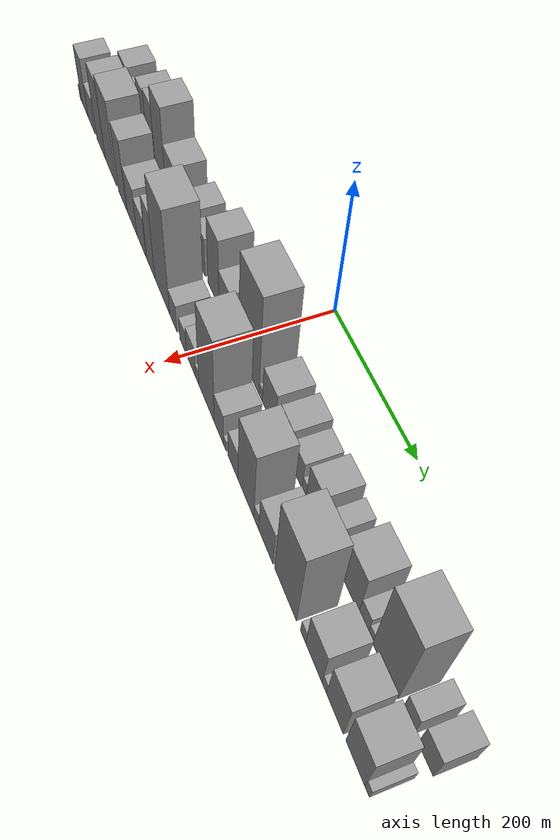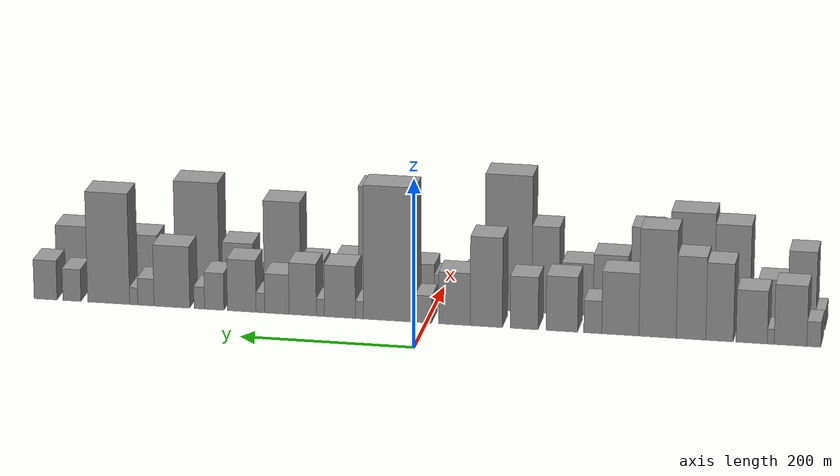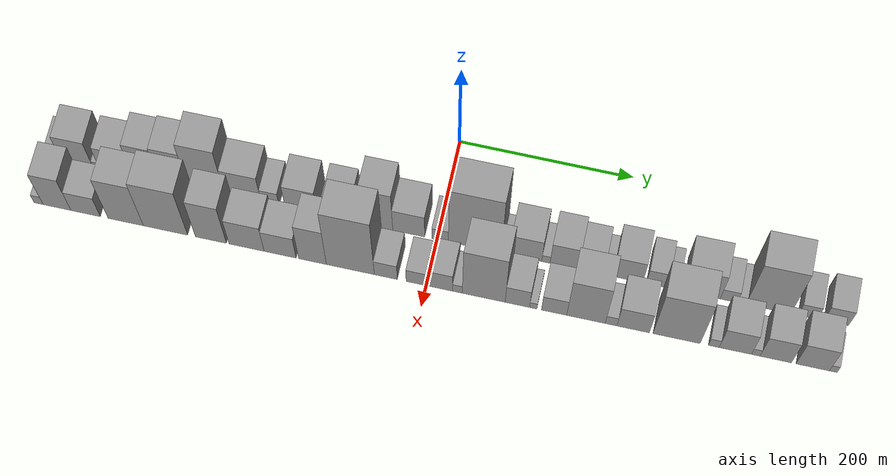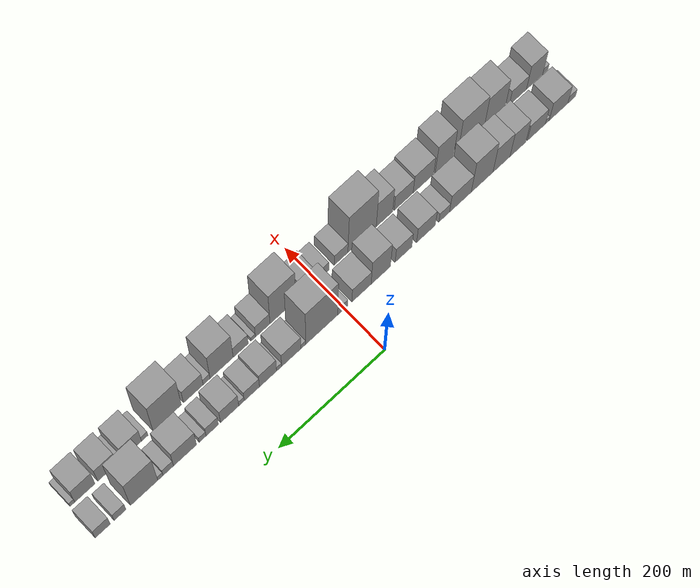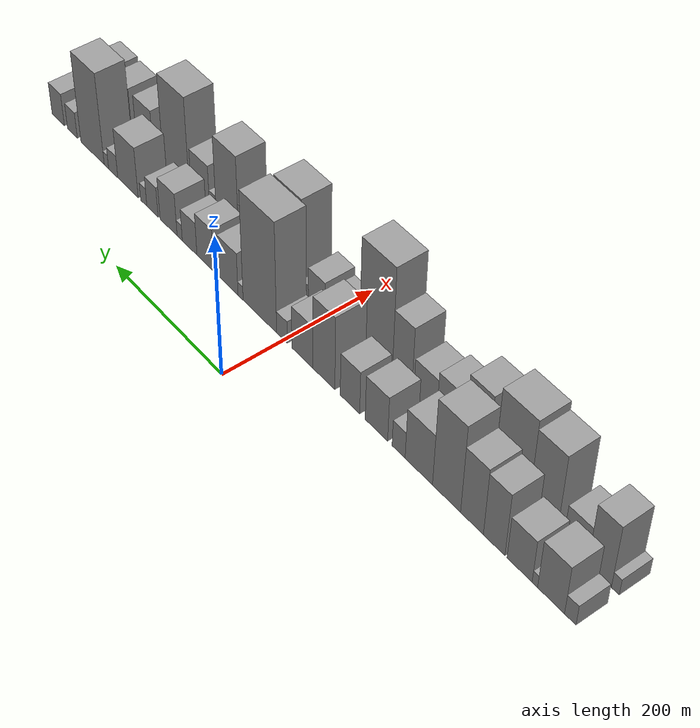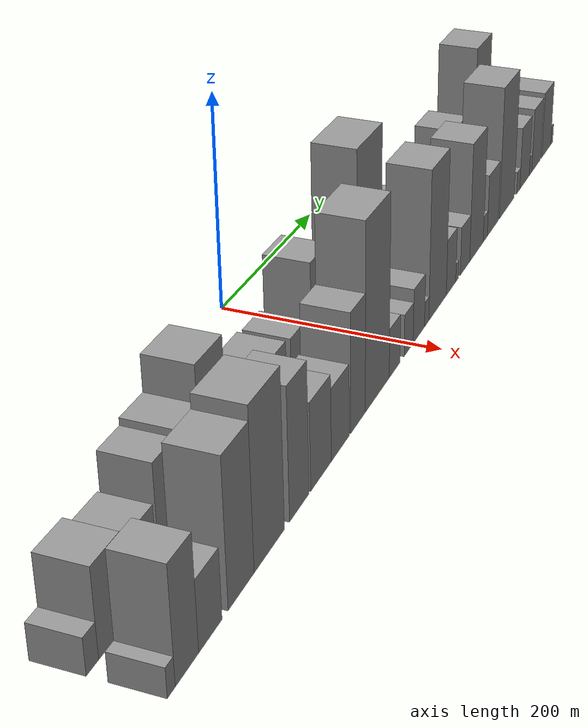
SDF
<sdf version="1.6">
 <world name="default">
  <scene>
   <sky><clouds><speed>12</speed></clouds></sky>
   <ambient>0.4 0.4 0.4 1</ambient>
   <background>0.7 0.7 0.7 1</background>
   <shadows>1</shadows>
  </scene>
  <gravity>0 0 -9.8066</gravity>
  <magnetic_field>6e-06 2.3e-05 -4.2e-05</magnetic_field>
  <physics default="0" name="default_physics" type="ode">
   <ode>
    <solver>
     <type>quick</type>
     <iters>10</iters>
     <sor>1.0</sor>
     <use_dynamic_moi_rescaling>0</use_dynamic_moi_rescaling>
    </solver>
    <constraints>
     <cfm>0</cfm>
     <erp>0.2</erp>
     <contact_max_correcting_vel>100</contact_max_correcting_vel>
     <contact_surface_layer>0.001</contact_surface_layer>
    </constraints>
   </ode>
   <max_step_size>0.004</max_step_size>
   <real_time_factor>1</real_time_factor>
   <real_time_update_rate>250</real_time_update_rate>
  </physics>
  <light name="sun" type="directional">
   <pose>0 0 10 0 0 0</pose>
   <diffuse>0.8 0.8 0.8 1</diffuse>
   <specular>0.2 0.2 0.2 1</specular>
   <attenuation>
    <range>1000</range>
    <constant>0.9</constant>
    <linear>0.01</linear>
    <quadratic>0.001</quadratic>
   </attenuation>
   <direction>-0.5 0.1 -0.9</direction>
  </light>
  <model name="building_1">
   <static>1</static>
   <pose>100.0000 -442.2037 0 0.000000 0.000000 0.000000</pose>
   <link name="link">
    <pose>0 0 15.00 0 0 0</pose>
    <collision name="collision"><geometry><box><size>40.0000 15.5926 30.0000</size></box></geometry></collision>
    <visual name="visual">
     <cast_shadows>0</cast_shadows>
     <geometry><box><size>40.0000 15.5926 30.0000</size></box></geometry>
     <material>
      <script>
       <uri>model://grey_wall/materials/scripts</uri>
       <uri>model://grey_wall/materials/textures</uri>
       <name>vrc/grey_wall</name>
      </script>
     </material>
    </visual>
   </link>
  </model>
  <model name="building_2">
   <static>1</static>
   <pose>100.0000 -415.8733 0 0.000000 0.000000 0.000000</pose>
   <link name="link">
    <pose>0 0 36.00 0 0 0</pose>
    <collision name="collision"><geometry><box><size>40.0000 37.0681 72.0000</size></box></geometry></collision>
    <visual name="visual">
     <cast_shadows>0</cast_shadows>
     <geometry><box><size>40.0000 37.0681 72.0000</size></box></geometry>
     <material>
      <script>
       <uri>model://grey_wall/materials/scripts</uri>
       <uri>model://grey_wall/materials/textures</uri>
       <name>vrc/grey_wall</name>
      </script>
     </material>
    </visual>
   </link>
  </model>
  <model name="building_3">
   <static>1</static>
   <pose>100.0000 -393.5044 0 0.000000 0.000000 0.000000</pose>
   <link name="link">
    <pose>0 0 9.00 0 0 0</pose>
    <collision name="collision"><geometry><box><size>40.0000 7.6696 18.0000</size></box></geometry></collision>
    <visual name="visual">
     <cast_shadows>0</cast_shadows>
     <geometry><box><size>40.0000 7.6696 18.0000</size></box></geometry>
     <material>
      <script>
       <uri>model://grey_wall/materials/scripts</uri>
       <uri>model://grey_wall/materials/textures</uri>
       <name>vrc/grey_wall</name>
      </script>
     </material>
    </visual>
   </link>
  </model>
  <model name="building_4">
   <static>1</static>
   <pose>100.0000 -371.9706 0 0.000000 0.000000 0.000000</pose>
   <link name="link">
    <pose>0 0 31.50 0 0 0</pose>
    <collision name="collision"><geometry><box><size>40.0000 35.3980 63.0000</size></box></geometry></collision>
    <visual name="visual">
     <cast_shadows>0</cast_shadows>
     <geometry><box><size>40.0000 35.3980 63.0000</size></box></geometry>
     <material>
      <script>
       <uri>model://grey_wall/materials/scripts</uri>
       <uri>model://grey_wall/materials/textures</uri>
       <name>vrc/grey_wall</name>
      </script>
     </material>
    </visual>
   </link>
  </model>
  <model name="building_5">
   <static>1</static>
   <pose>100.0000 -335.6608 0 0.000000 0.000000 0.000000</pose>
   <link name="link">
    <pose>0 0 46.50 0 0 0</pose>
    <collision name="collision"><geometry><box><size>40.0000 31.2217 93.0000</size></box></geometry></collision>
    <visual name="visual">
     <cast_shadows>0</cast_shadows>
     <geometry><box><size>40.0000 31.2217 93.0000</size></box></geometry>
     <material>
      <script>
       <uri>model://grey_wall/materials/scripts</uri>
       <uri>model://grey_wall/materials/textures</uri>
       <name>vrc/grey_wall</name>
      </script>
     </material>
    </visual>
   </link>
  </model>
  <model name="building_6">
   <static>1</static>
   <pose>100.0000 -303.2378 0 0.000000 0.000000 0.000000</pose>
   <link name="link">
    <pose>0 0 49.50 0 0 0</pose>
    <collision name="collision"><geometry><box><size>40.0000 33.6242 99.0000</size></box></geometry></collision>
    <visual name="visual">
     <cast_shadows>0</cast_shadows>
     <geometry><box><size>40.0000 33.6242 99.0000</size></box></geometry>
     <material>
      <script>
       <uri>model://grey_wall/materials/scripts</uri>
       <uri>model://grey_wall/materials/textures</uri>
       <name>vrc/grey_wall</name>
      </script>
     </material>
    </visual>
   </link>
  </model>
  <model name="building_7">
   <static>1</static>
   <pose>100.0000 -265.1929 0 0.000000 0.000000 0.000000</pose>
   <link name="link">
    <pose>0 0 64.50 0 0 0</pose>
    <collision name="collision"><geometry><box><size>40.0000 42.4656 129.0000</size></box></geometry></collision>
    <visual name="visual">
     <cast_shadows>0</cast_shadows>
     <geometry><box><size>40.0000 42.4656 129.0000</size></box></geometry>
     <material>
      <script>
       <uri>model://grey_wall/materials/scripts</uri>
       <uri>model://grey_wall/materials/textures</uri>
       <name>vrc/grey_wall</name>
      </script>
     </material>
    </visual>
   </link>
  </model>
  <model name="building_8">
   <static>1</static>
   <pose>100.0000 -222.7425 0 0.000000 0.000000 0.000000</pose>
   <link name="link">
    <pose>0 0 37.50 0 0 0</pose>
    <collision name="collision"><geometry><box><size>40.0000 42.4352 75.0000</size></box></geometry></collision>
    <visual name="visual">
     <cast_shadows>0</cast_shadows>
     <geometry><box><size>40.0000 42.4352 75.0000</size></box></geometry>
     <material>
      <script>
       <uri>model://grey_wall/materials/scripts</uri>
       <uri>model://grey_wall/materials/textures</uri>
       <name>vrc/grey_wall</name>
      </script>
     </material>
    </visual>
   </link>
  </model>
  <model name="building_9">
   <static>1</static>
   <pose>100.0000 -191.2532 0 0.000000 0.000000 0.000000</pose>
   <link name="link">
    <pose>0 0 19.50 0 0 0</pose>
    <collision name="collision"><geometry><box><size>40.0000 20.5432 39.0000</size></box></geometry></collision>
    <visual name="visual">
     <cast_shadows>0</cast_shadows>
     <geometry><box><size>40.0000 20.5432 39.0000</size></box></geometry>
     <material>
      <script>
       <uri>model://grey_wall/materials/scripts</uri>
       <uri>model://grey_wall/materials/textures</uri>
       <name>vrc/grey_wall</name>
      </script>
     </material>
    </visual>
   </link>
  </model>
  <model name="building_10">
   <static>1</static>
   <pose>100.0000 -155.8428 0 0.000000 0.000000 0.000000</pose>
   <link name="link">
    <pose>0 0 33.00 0 0 0</pose>
    <collision name="collision"><geometry><box><size>40.0000 36.2777 66.0000</size></box></geometry></collision>
    <visual name="visual">
     <cast_shadows>0</cast_shadows>
     <geometry><box><size>40.0000 36.2777 66.0000</size></box></geometry>
     <material>
      <script>
       <uri>model://grey_wall/materials/scripts</uri>
       <uri>model://grey_wall/materials/textures</uri>
       <name>vrc/grey_wall</name>
      </script>
     </material>
    </visual>
   </link>
  </model>
  <model name="building_11">
   <static>1</static>
   <pose>100.0000 -112.6093 0 0.000000 0.000000 0.000000</pose>
   <link name="link">
    <pose>0 0 31.50 0 0 0</pose>
    <collision name="collision"><geometry><box><size>40.0000 32.1892 63.0000</size></box></geometry></collision>
    <visual name="visual">
     <cast_shadows>0</cast_shadows>
     <geometry><box><size>40.0000 32.1892 63.0000</size></box></geometry>
     <material>
      <script>
       <uri>model://grey_wall/materials/scripts</uri>
       <uri>model://grey_wall/materials/textures</uri>
       <name>vrc/grey_wall</name>
      </script>
     </material>
    </visual>
   </link>
  </model>
  <model name="building_12">
   <static>1</static>
   <pose>100.0000 -68.9816 0 0.000000 0.000000 0.000000</pose>
   <link name="link">
    <pose>0 0 54.00 0 0 0</pose>
    <collision name="collision"><geometry><box><size>40.0000 37.0663 108.0000</size></box></geometry></collision>
    <visual name="visual">
     <cast_shadows>0</cast_shadows>
     <geometry><box><size>40.0000 37.0663 108.0000</size></box></geometry>
     <material>
      <script>
       <uri>model://grey_wall/materials/scripts</uri>
       <uri>model://grey_wall/materials/textures</uri>
       <name>vrc/grey_wall</name>
      </script>
     </material>
    </visual>
   </link>
  </model>
  <model name="building_13">
   <static>1</static>
   <pose>100.0000 -32.1462 0 0.000000 0.000000 0.000000</pose>
   <link name="link">
    <pose>0 0 31.50 0 0 0</pose>
    <collision name="collision"><geometry><box><size>40.0000 36.6045 63.0000</size></box></geometry></collision>
    <visual name="visual">
     <cast_shadows>0</cast_shadows>
     <geometry><box><size>40.0000 36.6045 63.0000</size></box></geometry>
     <material>
      <script>
       <uri>model://grey_wall/materials/scripts</uri>
       <uri>model://grey_wall/materials/textures</uri>
       <name>vrc/grey_wall</name>
      </script>
     </material>
    </visual>
   </link>
  </model>
  <model name="building_14">
   <static>1</static>
   <pose>100.0000 3.6285 0 0.000000 0.000000 0.000000</pose>
   <link name="link">
    <pose>0 0 16.50 0 0 0</pose>
    <collision name="collision"><geometry><box><size>40.0000 18.9449 33.0000</size></box></geometry></collision>
    <visual name="visual">
     <cast_shadows>0</cast_shadows>
     <geometry><box><size>40.0000 18.9449 33.0000</size></box></geometry>
     <material>
      <script>
       <uri>model://grey_wall/materials/scripts</uri>
       <uri>model://grey_wall/materials/textures</uri>
       <name>vrc/grey_wall</name>
      </script>
     </material>
    </visual>
   </link>
  </model>
  <model name="building_15">
   <static>1</static>
   <pose>100.0000 43.3502 0 0.000000 0.000000 0.000000</pose>
   <link name="link">
    <pose>0 0 81.00 0 0 0</pose>
    <collision name="collision"><geometry><box><size>40.0000 60.4985 162.0000</size></box></geometry></collision>
    <visual name="visual">
     <cast_shadows>0</cast_shadows>
     <geometry><box><size>40.0000 60.4985 162.0000</size></box></geometry>
     <material>
      <script>
       <uri>model://grey_wall/materials/scripts</uri>
       <uri>model://grey_wall/materials/textures</uri>
       <name>vrc/grey_wall</name>
      </script>
     </material>
    </visual>
   </link>
  </model>
  <model name="building_16">
   <static>1</static>
   <pose>100.0000 78.2731 0 0.000000 0.000000 0.000000</pose>
   <link name="link">
    <pose>0 0 10.50 0 0 0</pose>
    <collision name="collision"><geometry><box><size>40.0000 9.3473 21.0000</size></box></geometry></collision>
    <visual name="visual">
     <cast_shadows>0</cast_shadows>
     <geometry><box><size>40.0000 9.3473 21.0000</size></box></geometry>
     <material>
      <script>
       <uri>model://grey_wall/materials/scripts</uri>
       <uri>model://grey_wall/materials/textures</uri>
       <name>vrc/grey_wall</name>
      </script>
     </material>
    </visual>
   </link>
  </model>
  <model name="building_17">
   <static>1</static>
   <pose>100.0000 100.9975 0 0.000000 0.000000 0.000000</pose>
   <link name="link">
    <pose>0 0 31.50 0 0 0</pose>
    <collision name="collision"><geometry><box><size>40.0000 36.1016 63.0000</size></box></geometry></collision>
    <visual name="visual">
     <cast_shadows>0</cast_shadows>
     <geometry><box><size>40.0000 36.1016 63.0000</size></box></geometry>
     <material>
      <script>
       <uri>model://grey_wall/materials/scripts</uri>
       <uri>model://grey_wall/materials/textures</uri>
       <name>vrc/grey_wall</name>
      </script>
     </material>
    </visual>
   </link>
  </model>
  <model name="building_18">
   <static>1</static>
   <pose>100.0000 123.7609 0 0.000000 0.000000 0.000000</pose>
   <link name="link">
    <pose>0 0 10.50 0 0 0</pose>
    <collision name="collision"><geometry><box><size>40.0000 9.4252 21.0000</size></box></geometry></collision>
    <visual name="visual">
     <cast_shadows>0</cast_shadows>
     <geometry><box><size>40.0000 9.4252 21.0000</size></box></geometry>
     <material>
      <script>
       <uri>model://grey_wall/materials/scripts</uri>
       <uri>model://grey_wall/materials/textures</uri>
       <name>vrc/grey_wall</name>
      </script>
     </material>
    </visual>
   </link>
  </model>
  <model name="building_19">
   <static>1</static>
   <pose>100.0000 144.4785 0 0.000000 0.000000 0.000000</pose>
   <link name="link">
    <pose>0 0 31.50 0 0 0</pose>
    <collision name="collision"><geometry><box><size>40.0000 32.0101 63.0000</size></box></geometry></collision>
    <visual name="visual">
     <cast_shadows>0</cast_shadows>
     <geometry><box><size>40.0000 32.0101 63.0000</size></box></geometry>
     <material>
      <script>
       <uri>model://grey_wall/materials/scripts</uri>
       <uri>model://grey_wall/materials/textures</uri>
       <name>vrc/grey_wall</name>
      </script>
     </material>
    </visual>
   </link>
  </model>
  <model name="building_20">
   <static>1</static>
   <pose>100.0000 174.7218 0 0.000000 0.000000 0.000000</pose>
   <link name="link">
    <pose>0 0 24.00 0 0 0</pose>
    <collision name="collision"><geometry><box><size>40.0000 28.4764 48.0000</size></box></geometry></collision>
    <visual name="visual">
     <cast_shadows>0</cast_shadows>
     <geometry><box><size>40.0000 28.4764 48.0000</size></box></geometry>
     <material>
      <script>
       <uri>model://grey_wall/materials/scripts</uri>
       <uri>model://grey_wall/materials/textures</uri>
       <name>vrc/grey_wall</name>
      </script>
     </material>
    </visual>
   </link>
  </model>
  <model name="building_21">
   <static>1</static>
   <pose>100.0000 194.0544 0 0.000000 0.000000 0.000000</pose>
   <link name="link">
    <pose>0 0 12.00 0 0 0</pose>
    <collision name="collision"><geometry><box><size>40.0000 10.1888 24.0000</size></box></geometry></collision>
    <visual name="visual">
     <cast_shadows>0</cast_shadows>
     <geometry><box><size>40.0000 10.1888 24.0000</size></box></geometry>
     <material>
      <script>
       <uri>model://grey_wall/materials/scripts</uri>
       <uri>model://grey_wall/materials/textures</uri>
       <name>vrc/grey_wall</name>
      </script>
     </material>
    </visual>
   </link>
  </model>
  <model name="building_22">
   <static>1</static>
   <pose>100.0000 216.0240 0 0.000000 0.000000 0.000000</pose>
   <link name="link">
    <pose>0 0 31.50 0 0 0</pose>
    <collision name="collision"><geometry><box><size>40.0000 33.7504 63.0000</size></box></geometry></collision>
    <visual name="visual">
     <cast_shadows>0</cast_shadows>
     <geometry><box><size>40.0000 33.7504 63.0000</size></box></geometry>
     <material>
      <script>
       <uri>model://grey_wall/materials/scripts</uri>
       <uri>model://grey_wall/materials/textures</uri>
       <name>vrc/grey_wall</name>
      </script>
     </material>
    </visual>
   </link>
  </model>
  <model name="building_23">
   <static>1</static>
   <pose>100.0000 248.3061 0 0.000000 0.000000 0.000000</pose>
   <link name="link">
    <pose>0 0 22.50 0 0 0</pose>
    <collision name="collision"><geometry><box><size>40.0000 22.8138 45.0000</size></box></geometry></collision>
    <visual name="visual">
     <cast_shadows>0</cast_shadows>
     <geometry><box><size>40.0000 22.8138 45.0000</size></box></geometry>
     <material>
      <script>
       <uri>model://grey_wall/materials/scripts</uri>
       <uri>model://grey_wall/materials/textures</uri>
       <name>vrc/grey_wall</name>
      </script>
     </material>
    </visual>
   </link>
  </model>
  <model name="building_24">
   <static>1</static>
   <pose>100.0000 265.9778 0 0.000000 0.000000 0.000000</pose>
   <link name="link">
    <pose>0 0 13.50 0 0 0</pose>
    <collision name="collision"><geometry><box><size>40.0000 12.5296 27.0000</size></box></geometry></collision>
    <visual name="visual">
     <cast_shadows>0</cast_shadows>
     <geometry><box><size>40.0000 12.5296 27.0000</size></box></geometry>
     <material>
      <script>
       <uri>model://grey_wall/materials/scripts</uri>
       <uri>model://grey_wall/materials/textures</uri>
       <name>vrc/grey_wall</name>
      </script>
     </material>
    </visual>
   </link>
  </model>
  <model name="building_25">
   <static>1</static>
   <pose>100.0000 298.4218 0 0.000000 0.000000 0.000000</pose>
   <link name="link">
    <pose>0 0 37.50 0 0 0</pose>
    <collision name="collision"><geometry><box><size>40.0000 42.3584 75.0000</size></box></geometry></collision>
    <visual name="visual">
     <cast_shadows>0</cast_shadows>
     <geometry><box><size>40.0000 42.3584 75.0000</size></box></geometry>
     <material>
      <script>
       <uri>model://grey_wall/materials/scripts</uri>
       <uri>model://grey_wall/materials/textures</uri>
       <name>vrc/grey_wall</name>
      </script>
     </material>
    </visual>
   </link>
  </model>
  <model name="building_26">
   <static>1</static>
   <pose>100.0000 329.2476 0 0.000000 0.000000 0.000000</pose>
   <link name="link">
    <pose>0 0 16.50 0 0 0</pose>
    <collision name="collision"><geometry><box><size>40.0000 19.2931 33.0000</size></box></geometry></collision>
    <visual name="visual">
     <cast_shadows>0</cast_shadows>
     <geometry><box><size>40.0000 19.2931 33.0000</size></box></geometry>
     <material>
      <script>
       <uri>model://grey_wall/materials/scripts</uri>
       <uri>model://grey_wall/materials/textures</uri>
       <name>vrc/grey_wall</name>
      </script>
     </material>
    </visual>
   </link>
  </model>
  <model name="building_27">
   <static>1</static>
   <pose>100.0000 343.6469 0 0.000000 0.000000 0.000000</pose>
   <link name="link">
    <pose>0 0 10.50 0 0 0</pose>
    <collision name="collision"><geometry><box><size>40.0000 9.5056 21.0000</size></box></geometry></collision>
    <visual name="visual">
     <cast_shadows>0</cast_shadows>
     <geometry><box><size>40.0000 9.5056 21.0000</size></box></geometry>
     <material>
      <script>
       <uri>model://grey_wall/materials/scripts</uri>
       <uri>model://grey_wall/materials/textures</uri>
       <name>vrc/grey_wall</name>
      </script>
     </material>
    </visual>
   </link>
  </model>
  <model name="building_28">
   <static>1</static>
   <pose>100.0000 373.3791 0 0.000000 0.000000 0.000000</pose>
   <link name="link">
    <pose>0 0 67.50 0 0 0</pose>
    <collision name="collision"><geometry><box><size>40.0000 49.9587 135.0000</size></box></geometry></collision>
    <visual name="visual">
     <cast_shadows>0</cast_shadows>
     <geometry><box><size>40.0000 49.9587 135.0000</size></box></geometry>
     <material>
      <script>
       <uri>model://grey_wall/materials/scripts</uri>
       <uri>model://grey_wall/materials/textures</uri>
       <name>vrc/grey_wall</name>
      </script>
     </material>
    </visual>
   </link>
  </model>
  <model name="building_29">
   <static>1</static>
   <pose>100.0000 417.1376 0 0.000000 0.000000 0.000000</pose>
   <link name="link">
    <pose>0 0 19.50 0 0 0</pose>
    <collision name="collision"><geometry><box><size>40.0000 21.5583 39.0000</size></box></geometry></collision>
    <visual name="visual">
     <cast_shadows>0</cast_shadows>
     <geometry><box><size>40.0000 21.5583 39.0000</size></box></geometry>
     <material>
      <script>
       <uri>model://grey_wall/materials/scripts</uri>
       <uri>model://grey_wall/materials/textures</uri>
       <name>vrc/grey_wall</name>
      </script>
     </material>
    </visual>
   </link>
  </model>
  <model name="building_30">
   <static>1</static>
   <pose>100.0000 448.5752 0 0.000000 0.000000 0.000000</pose>
   <link name="link">
    <pose>0 0 24.00 0 0 0</pose>
    <collision name="collision"><geometry><box><size>40.0000 27.3170 48.0000</size></box></geometry></collision>
    <visual name="visual">
     <cast_shadows>0</cast_shadows>
     <geometry><box><size>40.0000 27.3170 48.0000</size></box></geometry>
     <material>
      <script>
       <uri>model://grey_wall/materials/scripts</uri>
       <uri>model://grey_wall/materials/textures</uri>
       <name>vrc/grey_wall</name>
      </script>
     </material>
    </visual>
   </link>
  </model>
  <model name="building_31">
   <static>1</static>
   <pose>155.0000 -444.6598 0 0.000000 0.000000 0.000000</pose>
   <link name="link">
    <pose>0 0 12.00 0 0 0</pose>
    <collision name="collision"><geometry><box><size>40.0000 10.6803 24.0000</size></box></geometry></collision>
    <visual name="visual">
     <cast_shadows>0</cast_shadows>
     <geometry><box><size>40.0000 10.6803 24.0000</size></box></geometry>
     <material>
      <script>
       <uri>model://grey_wall/materials/scripts</uri>
       <uri>model://grey_wall/materials/textures</uri>
       <name>vrc/grey_wall</name>
      </script>
     </material>
    </visual>
   </link>
  </model>
  <model name="building_32">
   <static>1</static>
   <pose>155.0000 -423.1718 0 0.000000 0.000000 0.000000</pose>
   <link name="link">
    <pose>0 0 46.50 0 0 0</pose>
    <collision name="collision"><geometry><box><size>40.0000 32.2959 93.0000</size></box></geometry></collision>
    <visual name="visual">
     <cast_shadows>0</cast_shadows>
     <geometry><box><size>40.0000 32.2959 93.0000</size></box></geometry>
     <material>
      <script>
       <uri>model://grey_wall/materials/scripts</uri>
       <uri>model://grey_wall/materials/textures</uri>
       <name>vrc/grey_wall</name>
      </script>
     </material>
    </visual>
   </link>
  </model>
  <model name="building_33">
   <static>1</static>
   <pose>155.0000 -390.0440 0 0.000000 0.000000 0.000000</pose>
   <link name="link">
    <pose>0 0 28.50 0 0 0</pose>
    <collision name="collision"><geometry><box><size>40.0000 33.9597 57.0000</size></box></geometry></collision>
    <visual name="visual">
     <cast_shadows>0</cast_shadows>
     <geometry><box><size>40.0000 33.9597 57.0000</size></box></geometry>
     <material>
      <script>
       <uri>model://grey_wall/materials/scripts</uri>
       <uri>model://grey_wall/materials/textures</uri>
       <name>vrc/grey_wall</name>
      </script>
     </material>
    </visual>
   </link>
  </model>
  <model name="building_34">
   <static>1</static>
   <pose>155.0000 -343.6153 0 0.000000 0.000000 0.000000</pose>
   <link name="link">
    <pose>0 0 60.00 0 0 0</pose>
    <collision name="collision"><geometry><box><size>40.0000 40.8975 120.0000</size></box></geometry></collision>
    <visual name="visual">
     <cast_shadows>0</cast_shadows>
     <geometry><box><size>40.0000 40.8975 120.0000</size></box></geometry>
     <material>
      <script>
       <uri>model://grey_wall/materials/scripts</uri>
       <uri>model://grey_wall/materials/textures</uri>
       <name>vrc/grey_wall</name>
      </script>
     </material>
    </visual>
   </link>
  </model>
  <model name="building_35">
   <static>1</static>
   <pose>155.0000 -297.6358 0 0.000000 0.000000 0.000000</pose>
   <link name="link">
    <pose>0 0 66.00 0 0 0</pose>
    <collision name="collision"><geometry><box><size>40.0000 51.0616 132.0000</size></box></geometry></collision>
    <visual name="visual">
     <cast_shadows>0</cast_shadows>
     <geometry><box><size>40.0000 51.0616 132.0000</size></box></geometry>
     <material>
      <script>
       <uri>model://grey_wall/materials/scripts</uri>
       <uri>model://grey_wall/materials/textures</uri>
       <name>vrc/grey_wall</name>
      </script>
     </material>
    </visual>
   </link>
  </model>
  <model name="building_36">
   <static>1</static>
   <pose>155.0000 -245.2764 0 0.000000 0.000000 0.000000</pose>
   <link name="link">
    <pose>0 0 55.50 0 0 0</pose>
    <collision name="collision"><geometry><box><size>40.0000 35.6573 111.0000</size></box></geometry></collision>
    <visual name="visual">
     <cast_shadows>0</cast_shadows>
     <geometry><box><size>40.0000 35.6573 111.0000</size></box></geometry>
     <material>
      <script>
       <uri>model://grey_wall/materials/scripts</uri>
       <uri>model://grey_wall/materials/textures</uri>
       <name>vrc/grey_wall</name>
      </script>
     </material>
    </visual>
   </link>
  </model>
  <model name="building_37">
   <static>1</static>
   <pose>155.0000 -204.3783 0 0.000000 0.000000 0.000000</pose>
   <link name="link">
    <pose>0 0 37.50 0 0 0</pose>
    <collision name="collision"><geometry><box><size>40.0000 40.1388 75.0000</size></box></geometry></collision>
    <visual name="visual">
     <cast_shadows>0</cast_shadows>
     <geometry><box><size>40.0000 40.1388 75.0000</size></box></geometry>
     <material>
      <script>
       <uri>model://grey_wall/materials/scripts</uri>
       <uri>model://grey_wall/materials/textures</uri>
       <name>vrc/grey_wall</name>
      </script>
     </material>
    </visual>
   </link>
  </model>
  <model name="building_38">
   <static>1</static>
   <pose>155.0000 -166.0182 0 0.000000 0.000000 0.000000</pose>
   <link name="link">
    <pose>0 0 31.50 0 0 0</pose>
    <collision name="collision"><geometry><box><size>40.0000 36.5815 63.0000</size></box></geometry></collision>
    <visual name="visual">
     <cast_shadows>0</cast_shadows>
     <geometry><box><size>40.0000 36.5815 63.0000</size></box></geometry>
     <material>
      <script>
       <uri>model://grey_wall/materials/scripts</uri>
       <uri>model://grey_wall/materials/textures</uri>
       <name>vrc/grey_wall</name>
      </script>
     </material>
    </visual>
   </link>
  </model>
  <model name="building_39">
   <static>1</static>
   <pose>155.0000 -128.9381 0 0.000000 0.000000 0.000000</pose>
   <link name="link">
    <pose>0 0 52.50 0 0 0</pose>
    <collision name="collision"><geometry><box><size>40.0000 31.5786 105.0000</size></box></geometry></collision>
    <visual name="visual">
     <cast_shadows>0</cast_shadows>
     <geometry><box><size>40.0000 31.5786 105.0000</size></box></geometry>
     <material>
      <script>
       <uri>model://grey_wall/materials/scripts</uri>
       <uri>model://grey_wall/materials/textures</uri>
       <name>vrc/grey_wall</name>
      </script>
     </material>
    </visual>
   </link>
  </model>
  <model name="building_40">
   <static>1</static>
   <pose>155.0000 -85.9078 0 0.000000 0.000000 0.000000</pose>
   <link name="link">
    <pose>0 0 82.50 0 0 0</pose>
    <collision name="collision"><geometry><box><size>40.0000 54.4820 165.0000</size></box></geometry></collision>
    <visual name="visual">
     <cast_shadows>0</cast_shadows>
     <geometry><box><size>40.0000 54.4820 165.0000</size></box></geometry>
     <material>
      <script>
       <uri>model://grey_wall/materials/scripts</uri>
       <uri>model://grey_wall/materials/textures</uri>
       <name>vrc/grey_wall</name>
      </script>
     </material>
    </visual>
   </link>
  </model>
  <model name="building_41">
   <static>1</static>
   <pose>155.0000 -45.6041 0 0.000000 0.000000 0.000000</pose>
   <link name="link">
    <pose>0 0 22.50 0 0 0</pose>
    <collision name="collision"><geometry><box><size>40.0000 26.1255 45.0000</size></box></geometry></collision>
    <visual name="visual">
     <cast_shadows>0</cast_shadows>
     <geometry><box><size>40.0000 26.1255 45.0000</size></box></geometry>
     <material>
      <script>
       <uri>model://grey_wall/materials/scripts</uri>
       <uri>model://grey_wall/materials/textures</uri>
       <name>vrc/grey_wall</name>
      </script>
     </material>
    </visual>
   </link>
  </model>
  <model name="building_42">
   <static>1</static>
   <pose>155.0000 -11.0528 0 0.000000 0.000000 0.000000</pose>
   <link name="link">
    <pose>0 0 19.50 0 0 0</pose>
    <collision name="collision"><geometry><box><size>40.0000 22.9770 39.0000</size></box></geometry></collision>
    <visual name="visual">
     <cast_shadows>0</cast_shadows>
     <geometry><box><size>40.0000 22.9770 39.0000</size></box></geometry>
     <material>
      <script>
       <uri>model://grey_wall/materials/scripts</uri>
       <uri>model://grey_wall/materials/textures</uri>
       <name>vrc/grey_wall</name>
      </script>
     </material>
    </visual>
   </link>
  </model>
  <model name="building_43">
   <static>1</static>
   <pose>155.0000 15.1236 0 0.000000 0.000000 0.000000</pose>
   <link name="link">
    <pose>0 0 25.50 0 0 0</pose>
    <collision name="collision"><geometry><box><size>40.0000 29.3757 51.0000</size></box></geometry></collision>
    <visual name="visual">
     <cast_shadows>0</cast_shadows>
     <geometry><box><size>40.0000 29.3757 51.0000</size></box></geometry>
     <material>
      <script>
       <uri>model://grey_wall/materials/scripts</uri>
       <uri>model://grey_wall/materials/textures</uri>
       <name>vrc/grey_wall</name>
      </script>
     </material>
    </visual>
   </link>
  </model>
  <model name="building_44">
   <static>1</static>
   <pose>155.0000 35.3722 0 0.000000 0.000000 0.000000</pose>
   <link name="link">
    <pose>0 0 12.00 0 0 0</pose>
    <collision name="collision"><geometry><box><size>40.0000 11.1215 24.0000</size></box></geometry></collision>
    <visual name="visual">
     <cast_shadows>0</cast_shadows>
     <geometry><box><size>40.0000 11.1215 24.0000</size></box></geometry>
     <material>
      <script>
       <uri>model://grey_wall/materials/scripts</uri>
       <uri>model://grey_wall/materials/textures</uri>
       <name>vrc/grey_wall</name>
      </script>
     </material>
    </visual>
   </link>
  </model>
  <model name="building_45">
   <static>1</static>
   <pose>155.0000 65.0980 0 0.000000 0.000000 0.000000</pose>
   <link name="link">
    <pose>0 0 70.50 0 0 0</pose>
    <collision name="collision"><geometry><box><size>40.0000 48.3301 141.0000</size></box></geometry></collision>
    <visual name="visual">
     <cast_shadows>0</cast_shadows>
     <geometry><box><size>40.0000 48.3301 141.0000</size></box></geometry>
     <material>
      <script>
       <uri>model://grey_wall/materials/scripts</uri>
       <uri>model://grey_wall/materials/textures</uri>
       <name>vrc/grey_wall</name>
      </script>
     </material>
    </visual>
   </link>
  </model>
  <model name="building_46">
   <static>1</static>
   <pose>155.0000 102.9745 0 0.000000 0.000000 0.000000</pose>
   <link name="link">
    <pose>0 0 27.00 0 0 0</pose>
    <collision name="collision"><geometry><box><size>40.0000 27.4228 54.0000</size></box></geometry></collision>
    <visual name="visual">
     <cast_shadows>0</cast_shadows>
     <geometry><box><size>40.0000 27.4228 54.0000</size></box></geometry>
     <material>
      <script>
       <uri>model://grey_wall/materials/scripts</uri>
       <uri>model://grey_wall/materials/textures</uri>
       <name>vrc/grey_wall</name>
      </script>
     </material>
    </visual>
   </link>
  </model>
  <model name="building_47">
   <static>1</static>
   <pose>155.0000 120.8293 0 0.000000 0.000000 0.000000</pose>
   <link name="link">
    <pose>0 0 9.00 0 0 0</pose>
    <collision name="collision"><geometry><box><size>40.0000 8.2870 18.0000</size></box></geometry></collision>
    <visual name="visual">
     <cast_shadows>0</cast_shadows>
     <geometry><box><size>40.0000 8.2870 18.0000</size></box></geometry>
     <material>
      <script>
       <uri>model://grey_wall/materials/scripts</uri>
       <uri>model://grey_wall/materials/textures</uri>
       <name>vrc/grey_wall</name>
      </script>
     </material>
    </visual>
   </link>
  </model>
  <model name="building_48">
   <static>1</static>
   <pose>155.0000 144.1279 0 0.000000 0.000000 0.000000</pose>
   <link name="link">
    <pose>0 0 24.00 0 0 0</pose>
    <collision name="collision"><geometry><box><size>40.0000 28.3102 48.0000</size></box></geometry></collision>
    <visual name="visual">
     <cast_shadows>0</cast_shadows>
     <geometry><box><size>40.0000 28.3102 48.0000</size></box></geometry>
     <material>
      <script>
       <uri>model://grey_wall/materials/scripts</uri>
       <uri>model://grey_wall/materials/textures</uri>
       <name>vrc/grey_wall</name>
      </script>
     </material>
    </visual>
   </link>
  </model>
  <model name="building_49">
   <static>1</static>
   <pose>155.0000 179.8417 0 0.000000 0.000000 0.000000</pose>
   <link name="link">
    <pose>0 0 58.50 0 0 0</pose>
    <collision name="collision"><geometry><box><size>40.0000 43.1173 117.0000</size></box></geometry></collision>
    <visual name="visual">
     <cast_shadows>0</cast_shadows>
     <geometry><box><size>40.0000 43.1173 117.0000</size></box></geometry>
     <material>
      <script>
       <uri>model://grey_wall/materials/scripts</uri>
       <uri>model://grey_wall/materials/textures</uri>
       <name>vrc/grey_wall</name>
      </script>
     </material>
    </visual>
   </link>
  </model>
  <model name="building_50">
   <static>1</static>
   <pose>155.0000 207.8905 0 0.000000 0.000000 0.000000</pose>
   <link name="link">
    <pose>0 0 13.50 0 0 0</pose>
    <collision name="collision"><geometry><box><size>40.0000 12.9804 27.0000</size></box></geometry></collision>
    <visual name="visual">
     <cast_shadows>0</cast_shadows>
     <geometry><box><size>40.0000 12.9804 27.0000</size></box></geometry>
     <material>
      <script>
       <uri>model://grey_wall/materials/scripts</uri>
       <uri>model://grey_wall/materials/textures</uri>
       <name>vrc/grey_wall</name>
      </script>
     </material>
    </visual>
   </link>
  </model>
  <model name="building_51">
   <static>1</static>
   <pose>155.0000 232.5144 0 0.000000 0.000000 0.000000</pose>
   <link name="link">
    <pose>0 0 31.50 0 0 0</pose>
    <collision name="collision"><geometry><box><size>40.0000 36.2673 63.0000</size></box></geometry></collision>
    <visual name="visual">
     <cast_shadows>0</cast_shadows>
     <geometry><box><size>40.0000 36.2673 63.0000</size></box></geometry>
     <material>
      <script>
       <uri>model://grey_wall/materials/scripts</uri>
       <uri>model://grey_wall/materials/textures</uri>
       <name>vrc/grey_wall</name>
      </script>
     </material>
    </visual>
   </link>
  </model>
  <model name="building_52">
   <static>1</static>
   <pose>155.0000 280.8864 0 0.000000 0.000000 0.000000</pose>
   <link name="link">
    <pose>0 0 67.50 0 0 0</pose>
    <collision name="collision"><geometry><box><size>40.0000 52.4767 135.0000</size></box></geometry></collision>
    <visual name="visual">
     <cast_shadows>0</cast_shadows>
     <geometry><box><size>40.0000 52.4767 135.0000</size></box></geometry>
     <material>
      <script>
       <uri>model://grey_wall/materials/scripts</uri>
       <uri>model://grey_wall/materials/textures</uri>
       <name>vrc/grey_wall</name>
      </script>
     </material>
    </visual>
   </link>
  </model>
  <model name="building_53">
   <static>1</static>
   <pose>155.0000 322.1110 0 0.000000 0.000000 0.000000</pose>
   <link name="link">
    <pose>0 0 12.00 0 0 0</pose>
    <collision name="collision"><geometry><box><size>40.0000 11.9725 24.0000</size></box></geometry></collision>
    <visual name="visual">
     <cast_shadows>0</cast_shadows>
     <geometry><box><size>40.0000 11.9725 24.0000</size></box></geometry>
     <material>
      <script>
       <uri>model://grey_wall/materials/scripts</uri>
       <uri>model://grey_wall/materials/textures</uri>
       <name>vrc/grey_wall</name>
      </script>
     </material>
    </visual>
   </link>
  </model>
  <model name="building_54">
   <static>1</static>
   <pose>155.0000 345.9662 0 0.000000 0.000000 0.000000</pose>
   <link name="link">
    <pose>0 0 33.00 0 0 0</pose>
    <collision name="collision"><geometry><box><size>40.0000 35.7379 66.0000</size></box></geometry></collision>
    <visual name="visual">
     <cast_shadows>0</cast_shadows>
     <geometry><box><size>40.0000 35.7379 66.0000</size></box></geometry>
     <material>
      <script>
       <uri>model://grey_wall/materials/scripts</uri>
       <uri>model://grey_wall/materials/textures</uri>
       <name>vrc/grey_wall</name>
      </script>
     </material>
    </visual>
   </link>
  </model>
  <model name="building_55">
   <static>1</static>
   <pose>155.0000 368.5416 0 0.000000 0.000000 0.000000</pose>
   <link name="link">
    <pose>0 0 10.50 0 0 0</pose>
    <collision name="collision"><geometry><box><size>40.0000 9.4130 21.0000</size></box></geometry></collision>
    <visual name="visual">
     <cast_shadows>0</cast_shadows>
     <geometry><box><size>40.0000 9.4130 21.0000</size></box></geometry>
     <material>
      <script>
       <uri>model://grey_wall/materials/scripts</uri>
       <uri>model://grey_wall/materials/textures</uri>
       <name>vrc/grey_wall</name>
      </script>
     </material>
    </visual>
   </link>
  </model>
  <model name="building_56">
   <static>1</static>
   <pose>155.0000 390.6018 0 0.000000 0.000000 0.000000</pose>
   <link name="link">
    <pose>0 0 34.50 0 0 0</pose>
    <collision name="collision"><geometry><box><size>40.0000 34.7075 69.0000</size></box></geometry></collision>
    <visual name="visual">
     <cast_shadows>0</cast_shadows>
     <geometry><box><size>40.0000 34.7075 69.0000</size></box></geometry>
     <material>
      <script>
       <uri>model://grey_wall/materials/scripts</uri>
       <uri>model://grey_wall/materials/textures</uri>
       <name>vrc/grey_wall</name>
      </script>
     </material>
    </visual>
   </link>
  </model>
  <model name="building_57">
   <static>1</static>
   <pose>155.0000 431.3261 0 0.000000 0.000000 0.000000</pose>
   <link name="link">
    <pose>0 0 36.00 0 0 0</pose>
    <collision name="collision"><geometry><box><size>40.0000 36.7412 72.0000</size></box></geometry></collision>
    <visual name="visual">
     <cast_shadows>0</cast_shadows>
     <geometry><box><size>40.0000 36.7412 72.0000</size></box></geometry>
     <material>
      <script>
       <uri>model://grey_wall/materials/scripts</uri>
       <uri>model://grey_wall/materials/textures</uri>
       <name>vrc/grey_wall</name>
      </script>
     </material>
    </visual>
   </link>
  </model>
  <model name="building_58">
   <static>1</static>
   <pose>155.0000 453.9886 0 0.000000 0.000000 0.000000</pose>
   <link name="link">
    <pose>0 0 10.50 0 0 0</pose>
    <collision name="collision"><geometry><box><size>40.0000 8.5838 21.0000</size></box></geometry></collision>
    <visual name="visual">
     <cast_shadows>0</cast_shadows>
     <geometry><box><size>40.0000 8.5838 21.0000</size></box></geometry>
     <material>
      <script>
       <uri>model://grey_wall/materials/scripts</uri>
       <uri>model://grey_wall/materials/textures</uri>
       <name>vrc/grey_wall</name>
      </script>
     </material>
    </visual>
   </link>
  </model>
 </world>
</sdf>
